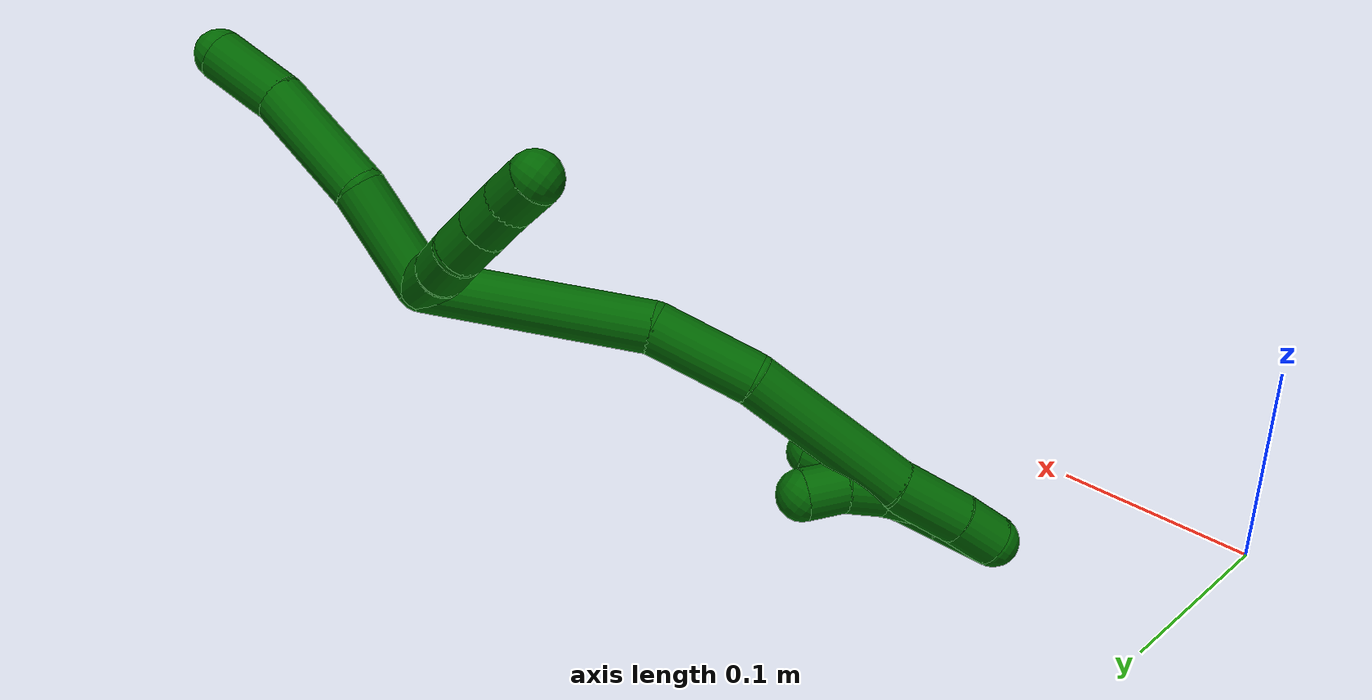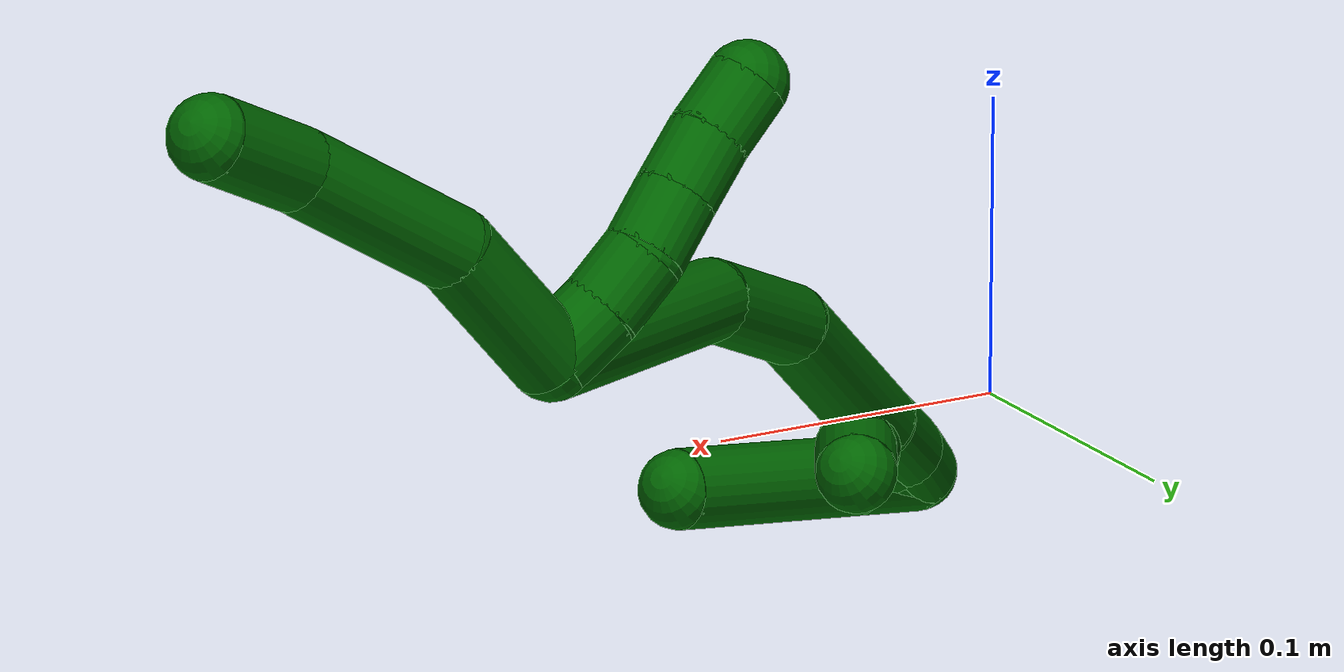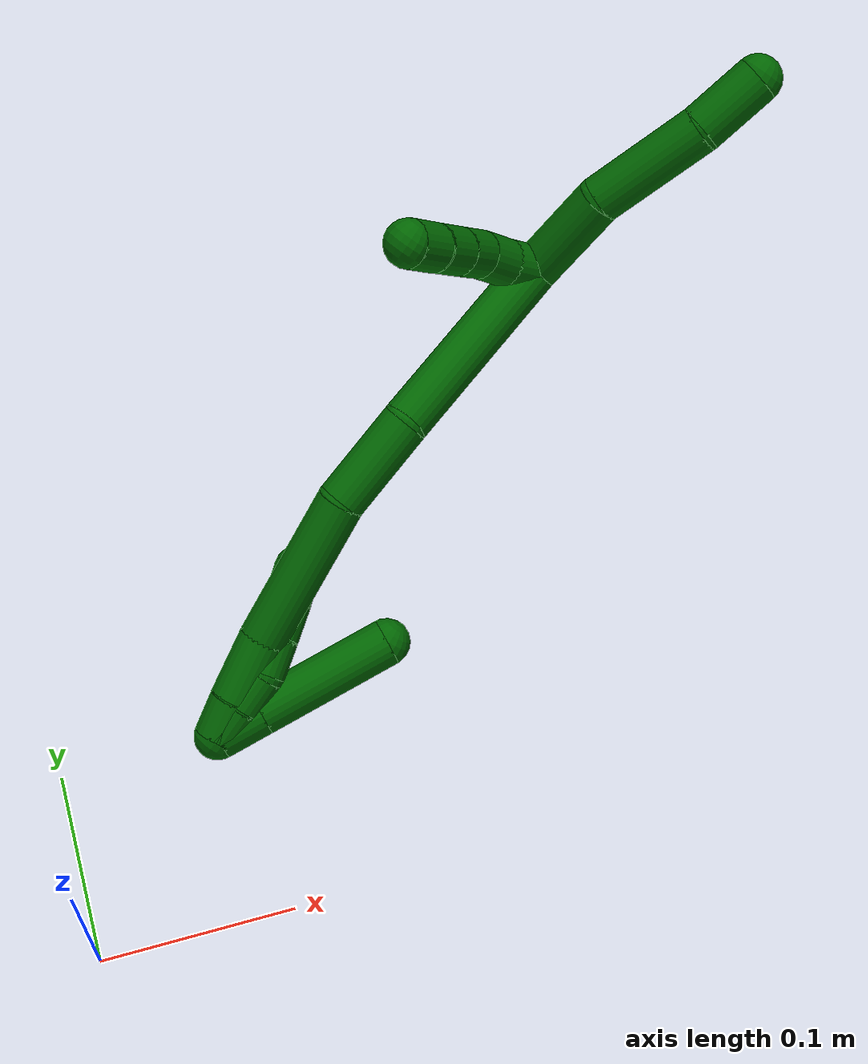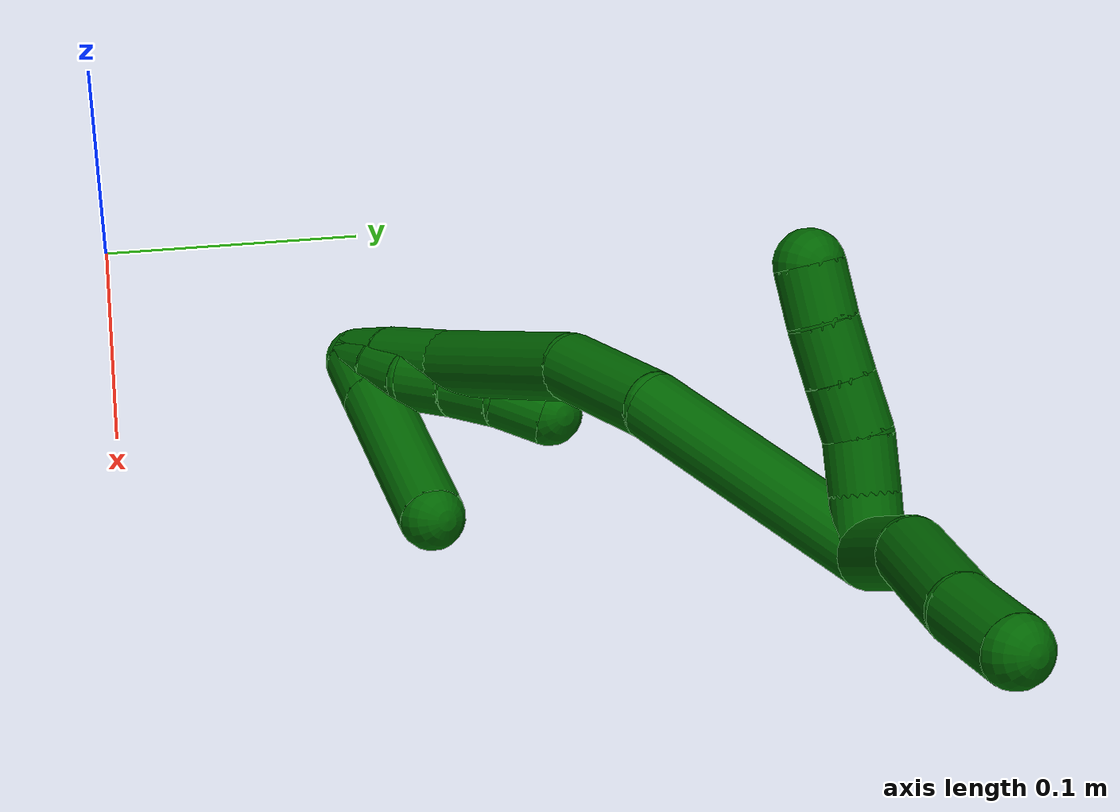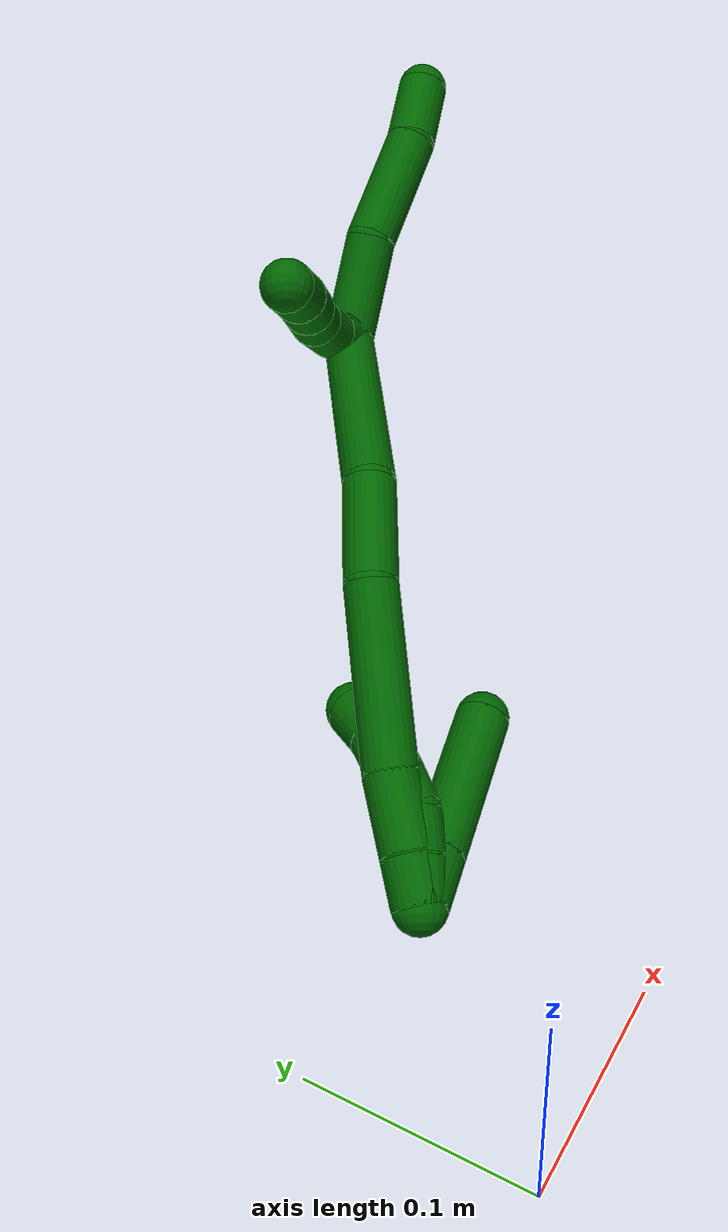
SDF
<sdf version="1.7">
 <world name="default">
  <model name="6">
   <static>0</static>
   <link name="6">
    <collision name="collision-cylinder-e_1_2_8">
     <pose>0.002683 -0.009106 0.02447 0.356231 0.102386 0.018447</pose>
     <geometry><cylinder><radius>0.0125</radius><length>0.052494</length></cylinder></geometry>
     <surface>
      <friction><ode><mu>1.16</mu><mu2>1.16</mu2><slip1>0</slip1><slip2>0</slip2></ode></friction>
      <contact><ode><kp>1e+06</kp><kd>1</kd><max_vel>0</max_vel><min_depth>0.001</min_depth></ode></contact>
     </surface>
    </collision>
    <visual name="visual-cylinder-e_1_2_8">
     <pose>0.002683 -0.009106 0.02447 0.356231 0.102386 0.018447</pose>
     <geometry><cylinder><radius>0.0125</radius><length>0.052494</length></cylinder></geometry>
     <material><ambient>0 0.392157 0.003922 1</ambient></material>
    </visual>
    <collision name="collision-cylinder-e_2_8_9">
     <pose>0.015368 -0.023022 0.077333 0.167857 0.334324 0.028388</pose>
     <geometry><cylinder><radius>0.0125</radius><length>0.06097</length></cylinder></geometry>
     <surface>
      <friction><ode><mu>1.16</mu><mu2>1.16</mu2><slip1>0</slip1><slip2>0</slip2></ode></friction>
      <contact><ode><kp>1e+06</kp><kd>1</kd><max_vel>0</max_vel><min_depth>0.001</min_depth></ode></contact>
     </surface>
    </collision>
    <visual name="visual-cylinder-e_2_8_9">
     <pose>0.015368 -0.023022 0.077333 0.167857 0.334324 0.028388</pose>
     <geometry><cylinder><radius>0.0125</radius><length>0.06097</length></cylinder></geometry>
     <material><ambient>0 0.392157 0.003922 1</ambient></material>
    </visual>
    <collision name="collision-cylinder-e_3_9_6">
     <pose>0.029758 -0.027435 0.123454 -0.022469 0.242479 -0.002738</pose>
     <geometry><cylinder><radius>0.0125</radius><length>0.036536</length></cylinder></geometry>
     <surface>
      <friction><ode><mu>1.16</mu><mu2>1.16</mu2><slip1>0</slip1><slip2>0</slip2></ode></friction>
      <contact><ode><kp>1e+06</kp><kd>1</kd><max_vel>0</max_vel><min_depth>0.001</min_depth></ode></contact>
     </surface>
    </collision>
    <visual name="visual-cylinder-e_3_9_6">
     <pose>0.029758 -0.027435 0.123454 -0.022469 0.242479 -0.002738</pose>
     <geometry><cylinder><radius>0.0125</radius><length>0.036536</length></cylinder></geometry>
     <material><ambient>0 0.392157 0.003922 1</ambient></material>
    </visual>
    <collision name="collision-cylinder-e_1_2_10">
     <pose>-0.00747 -0.006273 -0.0022 1.90807 -0.843588 -1.12848</pose>
     <geometry><cylinder><radius>0.0125</radius><length>0.02</length></cylinder></geometry>
     <surface>
      <friction><ode><mu>1.16</mu><mu2>1.16</mu2><slip1>0</slip1><slip2>0</slip2></ode></friction>
      <contact><ode><kp>1e+06</kp><kd>1</kd><max_vel>0</max_vel><min_depth>0.001</min_depth></ode></contact>
     </surface>
    </collision>
    <visual name="visual-cylinder-e_1_2_10">
     <pose>-0.00747 -0.006273 -0.0022 1.90807 -0.843588 -1.12848</pose>
     <geometry><cylinder><radius>0.0125</radius><length>0.02</length></cylinder></geometry>
     <material><ambient>0 0.392157 0.003922 1</ambient></material>
    </visual>
    <collision name="collision-cylinder-e_2_10_11">
     <pose>-0.02194 -0.019572 -0.005685 1.75175 -0.775342 -0.910938</pose>
     <geometry><cylinder><radius>0.0125</radius><length>0.02</length></cylinder></geometry>
     <surface>
      <friction><ode><mu>1.16</mu><mu2>1.16</mu2><slip1>0</slip1><slip2>0</slip2></ode></friction>
      <contact><ode><kp>1e+06</kp><kd>1</kd><max_vel>0</max_vel><min_depth>0.001</min_depth></ode></contact>
     </surface>
    </collision>
    <visual name="visual-cylinder-e_2_10_11">
     <pose>-0.02194 -0.019572 -0.005685 1.75175 -0.775342 -0.910938</pose>
     <geometry><cylinder><radius>0.0125</radius><length>0.02</length></cylinder></geometry>
     <material><ambient>0 0.392157 0.003922 1</ambient></material>
    </visual>
    <collision name="collision-cylinder-e_3_11_12">
     <pose>-0.034228 -0.034918 -0.008641 1.76896 -0.55719 -0.671887</pose>
     <geometry><cylinder><radius>0.0125</radius><length>0.02</length></cylinder></geometry>
     <surface>
      <friction><ode><mu>1.16</mu><mu2>1.16</mu2><slip1>0</slip1><slip2>0</slip2></ode></friction>
      <contact><ode><kp>1e+06</kp><kd>1</kd><max_vel>0</max_vel><min_depth>0.001</min_depth></ode></contact>
     </surface>
    </collision>
    <visual name="visual-cylinder-e_3_11_12">
     <pose>-0.034228 -0.034918 -0.008641 1.76896 -0.55719 -0.671887</pose>
     <geometry><cylinder><radius>0.0125</radius><length>0.02</length></cylinder></geometry>
     <material><ambient>0 0.392157 0.003922 1</ambient></material>
    </visual>
    <collision name="collision-cylinder-e_4_12_13">
     <pose>-0.044954 -0.051461 -0.011999 1.77316 -0.574933 -0.69549</pose>
     <geometry><cylinder><radius>0.0125</radius><length>0.02</length></cylinder></geometry>
     <surface>
      <friction><ode><mu>1.16</mu><mu2>1.16</mu2><slip1>0</slip1><slip2>0</slip2></ode></friction>
      <contact><ode><kp>1e+06</kp><kd>1</kd><max_vel>0</max_vel><min_depth>0.001</min_depth></ode></contact>
     </surface>
    </collision>
    <visual name="visual-cylinder-e_4_12_13">
     <pose>-0.044954 -0.051461 -0.011999 1.77316 -0.574933 -0.69549</pose>
     <geometry><cylinder><radius>0.0125</radius><length>0.02</length></cylinder></geometry>
     <material><ambient>0 0.392157 0.003922 1</ambient></material>
    </visual>
    <collision name="collision-cylinder-e_5_13_5">
     <pose>-0.056518 -0.067335 -0.01566 1.8233 -0.65937 -0.831798</pose>
     <geometry><cylinder><radius>0.0125</radius><length>0.02</length></cylinder></geometry>
     <surface>
      <friction><ode><mu>1.16</mu><mu2>1.16</mu2><slip1>0</slip1><slip2>0</slip2></ode></friction>
      <contact><ode><kp>1e+06</kp><kd>1</kd><max_vel>0</max_vel><min_depth>0.001</min_depth></ode></contact>
     </surface>
    </collision>
    <visual name="visual-cylinder-e_5_13_5">
     <pose>-0.056518 -0.067335 -0.01566 1.8233 -0.65937 -0.831798</pose>
     <geometry><cylinder><radius>0.0125</radius><length>0.02</length></cylinder></geometry>
     <material><ambient>0 0.392157 0.003922 1</ambient></material>
    </visual>
    <collision name="collision-cylinder-e_1_2_14">
     <pose>-0.006364 -0.02408 -0.047918 2.67592 -0.118109 -0.488683</pose>
     <geometry><cylinder><radius>0.0125</radius><length>0.108009</length></cylinder></geometry>
     <surface>
      <friction><ode><mu>1.16</mu><mu2>1.16</mu2><slip1>0</slip1><slip2>0</slip2></ode></friction>
      <contact><ode><kp>1e+06</kp><kd>1</kd><max_vel>0</max_vel><min_depth>0.001</min_depth></ode></contact>
     </surface>
    </collision>
    <visual name="visual-cylinder-e_1_2_14">
     <pose>-0.006364 -0.02408 -0.047918 2.67592 -0.118109 -0.488683</pose>
     <geometry><cylinder><radius>0.0125</radius><length>0.108009</length></cylinder></geometry>
     <material><ambient>0 0.392157 0.003922 1</ambient></material>
    </visual>
    <collision name="collision-cylinder-e_2_14_15">
     <pose>-0.01487 -0.052321 -0.120984 2.97764 -0.083861 -0.944255</pose>
     <geometry><cylinder><radius>0.0125</radius><length>0.05116</length></cylinder></geometry>
     <surface>
      <friction><ode><mu>1.16</mu><mu2>1.16</mu2><slip1>0</slip1><slip2>0</slip2></ode></friction>
      <contact><ode><kp>1e+06</kp><kd>1</kd><max_vel>0</max_vel><min_depth>0.001</min_depth></ode></contact>
     </surface>
    </collision>
    <visual name="visual-cylinder-e_2_14_15">
     <pose>-0.01487 -0.052321 -0.120984 2.97764 -0.083861 -0.944255</pose>
     <geometry><cylinder><radius>0.0125</radius><length>0.05116</length></cylinder></geometry>
     <material><ambient>0 0.392157 0.003922 1</ambient></material>
    </visual>
    <collision name="collision-cylinder-e_3_15_16">
     <pose>-0.013283 -0.055679 -0.18787 -3.12238 0.089103 -2.71712</pose>
     <geometry><cylinder><radius>0.0125</radius><length>0.083822</length></cylinder></geometry>
     <surface>
      <friction><ode><mu>1.16</mu><mu2>1.16</mu2><slip1>0</slip1><slip2>0</slip2></ode></friction>
      <contact><ode><kp>1e+06</kp><kd>1</kd><max_vel>0</max_vel><min_depth>0.001</min_depth></ode></contact>
     </surface>
    </collision>
    <visual name="visual-cylinder-e_3_15_16">
     <pose>-0.013283 -0.055679 -0.18787 -3.12238 0.089103 -2.71712</pose>
     <geometry><cylinder><radius>0.0125</radius><length>0.083822</length></cylinder></geometry>
     <material><ambient>0 0.392157 0.003922 1</ambient></material>
    </visual>
    <collision name="collision-cylinder-e_4_16_17">
     <pose>-0.006837 -0.056814 -0.246926 3.03021 0.154633 1.89408</pose>
     <geometry><cylinder><radius>0.0125</radius><length>0.035274</length></cylinder></geometry>
     <surface>
      <friction><ode><mu>1.16</mu><mu2>1.16</mu2><slip1>0</slip1><slip2>0</slip2></ode></friction>
      <contact><ode><kp>1e+06</kp><kd>1</kd><max_vel>0</max_vel><min_depth>0.001</min_depth></ode></contact>
     </surface>
    </collision>
    <visual name="visual-cylinder-e_4_16_17">
     <pose>-0.006837 -0.056814 -0.246926 3.03021 0.154633 1.89408</pose>
     <geometry><cylinder><radius>0.0125</radius><length>0.035274</length></cylinder></geometry>
     <material><ambient>0 0.392157 0.003922 1</ambient></material>
    </visual>
    <collision name="collision-cylinder-e_5_17_1">
     <pose>-0.002053 -0.059179 -0.274905 3.10149 0.191397 2.7297</pose>
     <geometry><cylinder><radius>0.0125</radius><length>0.021734</length></cylinder></geometry>
     <surface>
      <friction><ode><mu>1.16</mu><mu2>1.16</mu2><slip1>0</slip1><slip2>0</slip2></ode></friction>
      <contact><ode><kp>1e+06</kp><kd>1</kd><max_vel>0</max_vel><min_depth>0.001</min_depth></ode></contact>
     </surface>
    </collision>
    <visual name="visual-cylinder-e_5_17_1">
     <pose>-0.002053 -0.059179 -0.274905 3.10149 0.191397 2.7297</pose>
     <geometry><cylinder><radius>0.0125</radius><length>0.021734</length></cylinder></geometry>
     <material><ambient>0 0.392157 0.003922 1</ambient></material>
    </visual>
    <collision name="collision-cylinder-e_1_1_18">
     <pose>9.9e-05 -0.059088 -0.275579 -0.051861 0.00851 -0.000221</pose>
     <geometry><cylinder><radius>0.0125</radius><length>0.02</length></cylinder></geometry>
     <surface>
      <friction><ode><mu>1.16</mu><mu2>1.16</mu2><slip1>0</slip1><slip2>0</slip2></ode></friction>
      <contact><ode><kp>1e+06</kp><kd>1</kd><max_vel>0</max_vel><min_depth>0.001</min_depth></ode></contact>
     </surface>
    </collision>
    <visual name="visual-cylinder-e_1_1_18">
     <pose>9.9e-05 -0.059088 -0.275579 -0.051861 0.00851 -0.000221</pose>
     <geometry><cylinder><radius>0.0125</radius><length>0.02</length></cylinder></geometry>
     <material><ambient>0 0.392157 0.003922 1</ambient></material>
    </visual>
    <collision name="collision-cylinder-e_2_18_19">
     <pose>0.000233 -0.057079 -0.255704 -0.149627 0.004905 -0.000368</pose>
     <geometry><cylinder><radius>0.0125</radius><length>0.02</length></cylinder></geometry>
     <surface>
      <friction><ode><mu>1.16</mu><mu2>1.16</mu2><slip1>0</slip1><slip2>0</slip2></ode></friction>
      <contact><ode><kp>1e+06</kp><kd>1</kd><max_vel>0</max_vel><min_depth>0.001</min_depth></ode></contact>
     </surface>
    </collision>
    <visual name="visual-cylinder-e_2_18_19">
     <pose>0.000233 -0.057079 -0.255704 -0.149627 0.004905 -0.000368</pose>
     <geometry><cylinder><radius>0.0125</radius><length>0.02</length></cylinder></geometry>
     <material><ambient>0 0.392157 0.003922 1</ambient></material>
    </visual>
    <collision name="collision-cylinder-e_3_19_20">
     <pose>-0.002052 -0.052207 -0.236699 -0.355139 -0.2356 0.042471</pose>
     <geometry><cylinder><radius>0.0125</radius><length>0.02</length></cylinder></geometry>
     <surface>
      <friction><ode><mu>1.16</mu><mu2>1.16</mu2><slip1>0</slip1><slip2>0</slip2></ode></friction>
      <contact><ode><kp>1e+06</kp><kd>1</kd><max_vel>0</max_vel><min_depth>0.001</min_depth></ode></contact>
     </surface>
    </collision>
    <visual name="visual-cylinder-e_3_19_20">
     <pose>-0.002052 -0.052207 -0.236699 -0.355139 -0.2356 0.042471</pose>
     <geometry><cylinder><radius>0.0125</radius><length>0.02</length></cylinder></geometry>
     <material><ambient>0 0.392157 0.003922 1</ambient></material>
    </visual>
    <collision name="collision-cylinder-e_4_20_21">
     <pose>-0.006676 -0.04432 -0.218953 -0.481252 -0.230985 0.056917</pose>
     <geometry><cylinder><radius>0.0125</radius><length>0.02</length></cylinder></geometry>
     <surface>
      <friction><ode><mu>1.16</mu><mu2>1.16</mu2><slip1>0</slip1><slip2>0</slip2></ode></friction>
      <contact><ode><kp>1e+06</kp><kd>1</kd><max_vel>0</max_vel><min_depth>0.001</min_depth></ode></contact>
     </surface>
    </collision>
    <visual name="visual-cylinder-e_4_20_21">
     <pose>-0.006676 -0.04432 -0.218953 -0.481252 -0.230985 0.056917</pose>
     <geometry><cylinder><radius>0.0125</radius><length>0.02</length></cylinder></geometry>
     <material><ambient>0 0.392157 0.003922 1</ambient></material>
    </visual>
    <collision name="collision-cylinder-e_5_21_4">
     <pose>-0.011152 -0.03293 -0.20341 -0.783197 -0.220466 0.091343</pose>
     <geometry><cylinder><radius>0.0125</radius><length>0.02</length></cylinder></geometry>
     <surface>
      <friction><ode><mu>1.16</mu><mu2>1.16</mu2><slip1>0</slip1><slip2>0</slip2></ode></friction>
      <contact><ode><kp>1e+06</kp><kd>1</kd><max_vel>0</max_vel><min_depth>0.001</min_depth></ode></contact>
     </surface>
    </collision>
    <visual name="visual-cylinder-e_5_21_4">
     <pose>-0.011152 -0.03293 -0.20341 -0.783197 -0.220466 0.091343</pose>
     <geometry><cylinder><radius>0.0125</radius><length>0.02</length></cylinder></geometry>
     <material><ambient>0 0.392157 0.003922 1</ambient></material>
    </visual>
    <collision name="collision-cylinder-e_1_1_22">
     <pose>0.005864 -0.056792 -0.274592 -0.251085 0.47667 -0.061305</pose>
     <geometry><cylinder><radius>0.0125</radius><length>0.025499</length></cylinder></geometry>
     <surface>
      <friction><ode><mu>1.16</mu><mu2>1.16</mu2><slip1>0</slip1><slip2>0</slip2></ode></friction>
      <contact><ode><kp>1e+06</kp><kd>1</kd><max_vel>0</max_vel><min_depth>0.001</min_depth></ode></contact>
     </surface>
    </collision>
    <visual name="visual-cylinder-e_1_1_22">
     <pose>0.005864 -0.056792 -0.274592 -0.251085 0.47667 -0.061305</pose>
     <geometry><cylinder><radius>0.0125</radius><length>0.025499</length></cylinder></geometry>
     <material><ambient>0 0.392157 0.003922 1</ambient></material>
    </visual>
    <collision name="collision-cylinder-e_2_22_3">
     <pose>0.028781 -0.045713 -0.231556 -0.252266 0.475956 -0.061501</pose>
     <geometry><cylinder><radius>0.0125</radius><length>0.074501</length></cylinder></geometry>
     <surface>
      <friction><ode><mu>1.16</mu><mu2>1.16</mu2><slip1>0</slip1><slip2>0</slip2></ode></friction>
      <contact><ode><kp>1e+06</kp><kd>1</kd><max_vel>0</max_vel><min_depth>0.001</min_depth></ode></contact>
     </surface>
    </collision>
    <visual name="visual-cylinder-e_2_22_3">
     <pose>0.028781 -0.045713 -0.231556 -0.252266 0.475956 -0.061501</pose>
     <geometry><cylinder><radius>0.0125</radius><length>0.074501</length></cylinder></geometry>
     <material><ambient>0 0.392157 0.003922 1</ambient></material>
    </visual>
    <collision name="collision-sphere-3">
     <pose>0.045849 -0.037449 -0.199494 0 -0 0</pose>
     <geometry><sphere><radius>0.0125</radius></sphere></geometry>
     <surface>
      <friction><ode><mu>1.16</mu><mu2>1.16</mu2><slip1>0</slip1><slip2>0</slip2></ode></friction>
      <contact><ode><kp>1e+06</kp><kd>1</kd><max_vel>0</max_vel><min_depth>0.001</min_depth></ode></contact>
     </surface>
    </collision>
    <visual name="visual-sphere-3">
     <pose>0.045849 -0.037449 -0.199494 0 -0 0</pose>
     <geometry><sphere><radius>0.0125</radius></sphere></geometry>
     <material><ambient>0 0.392157 0.003922 1</ambient></material>
    </visual>
    <collision name="collision-sphere-22">
     <pose>0.011714 -0.053978 -0.263618 0 -0 0</pose>
     <geometry><sphere><radius>0.0125</radius></sphere></geometry>
     <surface>
      <friction><ode><mu>1.16</mu><mu2>1.16</mu2><slip1>0</slip1><slip2>0</slip2></ode></friction>
      <contact><ode><kp>1e+06</kp><kd>1</kd><max_vel>0</max_vel><min_depth>0.001</min_depth></ode></contact>
     </surface>
    </collision>
    <visual name="visual-sphere-22">
     <pose>0.011714 -0.053978 -0.263618 0 -0 0</pose>
     <geometry><sphere><radius>0.0125</radius></sphere></geometry>
     <material><ambient>0 0.392157 0.003922 1</ambient></material>
    </visual>
    <collision name="collision-sphere-4">
     <pose>-0.013339 -0.026045 -0.196495 0 -0 0</pose>
     <geometry><sphere><radius>0.0125</radius></sphere></geometry>
     <surface>
      <friction><ode><mu>1.16</mu><mu2>1.16</mu2><slip1>0</slip1><slip2>0</slip2></ode></friction>
      <contact><ode><kp>1e+06</kp><kd>1</kd><max_vel>0</max_vel><min_depth>0.001</min_depth></ode></contact>
     </surface>
    </collision>
    <visual name="visual-sphere-4">
     <pose>-0.013339 -0.026045 -0.196495 0 -0 0</pose>
     <geometry><sphere><radius>0.0125</radius></sphere></geometry>
     <material><ambient>0 0.392157 0.003922 1</ambient></material>
    </visual>
    <collision name="collision-sphere-21">
     <pose>-0.008965 -0.039814 -0.210325 0 -0 0</pose>
     <geometry><sphere><radius>0.0125</radius></sphere></geometry>
     <surface>
      <friction><ode><mu>1.16</mu><mu2>1.16</mu2><slip1>0</slip1><slip2>0</slip2></ode></friction>
      <contact><ode><kp>1e+06</kp><kd>1</kd><max_vel>0</max_vel><min_depth>0.001</min_depth></ode></contact>
     </surface>
    </collision>
    <visual name="visual-sphere-21">
     <pose>-0.008965 -0.039814 -0.210325 0 -0 0</pose>
     <geometry><sphere><radius>0.0125</radius></sphere></geometry>
     <material><ambient>0 0.392157 0.003922 1</ambient></material>
    </visual>
    <collision name="collision-sphere-20">
     <pose>-0.004386 -0.048826 -0.227582 0 -0 0</pose>
     <geometry><sphere><radius>0.0125</radius></sphere></geometry>
     <surface>
      <friction><ode><mu>1.16</mu><mu2>1.16</mu2><slip1>0</slip1><slip2>0</slip2></ode></friction>
      <contact><ode><kp>1e+06</kp><kd>1</kd><max_vel>0</max_vel><min_depth>0.001</min_depth></ode></contact>
     </surface>
    </collision>
    <visual name="visual-sphere-20">
     <pose>-0.004386 -0.048826 -0.227582 0 -0 0</pose>
     <geometry><sphere><radius>0.0125</radius></sphere></geometry>
     <material><ambient>0 0.392157 0.003922 1</ambient></material>
    </visual>
    <collision name="collision-sphere-11">
     <pose>-0.02894 -0.026597 -0.00697 0 -0 0</pose>
     <geometry><sphere><radius>0.0125</radius></sphere></geometry>
     <surface>
      <friction><ode><mu>1.16</mu><mu2>1.16</mu2><slip1>0</slip1><slip2>0</slip2></ode></friction>
      <contact><ode><kp>1e+06</kp><kd>1</kd><max_vel>0</max_vel><min_depth>0.001</min_depth></ode></contact>
     </surface>
    </collision>
    <visual name="visual-sphere-11">
     <pose>-0.02894 -0.026597 -0.00697 0 -0 0</pose>
     <geometry><sphere><radius>0.0125</radius></sphere></geometry>
     <material><ambient>0 0.392157 0.003922 1</ambient></material>
    </visual>
    <collision name="collision-sphere-10">
     <pose>-0.014941 -0.012547 -0.0044 0 -0 0</pose>
     <geometry><sphere><radius>0.0125</radius></sphere></geometry>
     <surface>
      <friction><ode><mu>1.16</mu><mu2>1.16</mu2><slip1>0</slip1><slip2>0</slip2></ode></friction>
      <contact><ode><kp>1e+06</kp><kd>1</kd><max_vel>0</max_vel><min_depth>0.001</min_depth></ode></contact>
     </surface>
    </collision>
    <visual name="visual-sphere-10">
     <pose>-0.014941 -0.012547 -0.0044 0 -0 0</pose>
     <geometry><sphere><radius>0.0125</radius></sphere></geometry>
     <material><ambient>0 0.392157 0.003922 1</ambient></material>
    </visual>
    <collision name="collision-sphere-6">
     <pose>0.034144 -0.027036 0.141184 0 -0 0</pose>
     <geometry><sphere><radius>0.0125</radius></sphere></geometry>
     <surface>
      <friction><ode><mu>1.16</mu><mu2>1.16</mu2><slip1>0</slip1><slip2>0</slip2></ode></friction>
      <contact><ode><kp>1e+06</kp><kd>1</kd><max_vel>0</max_vel><min_depth>0.001</min_depth></ode></contact>
     </surface>
    </collision>
    <visual name="visual-sphere-6">
     <pose>0.034144 -0.027036 0.141184 0 -0 0</pose>
     <geometry><sphere><radius>0.0125</radius></sphere></geometry>
     <material><ambient>0 0.392157 0.003922 1</ambient></material>
    </visual>
    <collision name="collision-sphere-9">
     <pose>0.025371 -0.027833 0.105725 0 -0 0</pose>
     <geometry><sphere><radius>0.0125</radius></sphere></geometry>
     <surface>
      <friction><ode><mu>1.16</mu><mu2>1.16</mu2><slip1>0</slip1><slip2>0</slip2></ode></friction>
      <contact><ode><kp>1e+06</kp><kd>1</kd><max_vel>0</max_vel><min_depth>0.001</min_depth></ode></contact>
     </surface>
    </collision>
    <visual name="visual-sphere-9">
     <pose>0.025371 -0.027833 0.105725 0 -0 0</pose>
     <geometry><sphere><radius>0.0125</radius></sphere></geometry>
     <material><ambient>0 0.392157 0.003922 1</ambient></material>
    </visual>
    <collision name="collision-sphere-2">
     <geometry><sphere><radius>0.0125</radius></sphere></geometry>
     <surface>
      <friction><ode><mu>1.16</mu><mu2>1.16</mu2><slip1>0</slip1><slip2>0</slip2></ode></friction>
      <contact><ode><kp>1e+06</kp><kd>1</kd><max_vel>0</max_vel><min_depth>0.001</min_depth></ode></contact>
     </surface>
    </collision>
    <visual name="visual-sphere-2">
     <geometry><sphere><radius>0.0125</radius></sphere></geometry>
     <material><ambient>0 0.392157 0.003922 1</ambient></material>
    </visual>
    <collision name="collision-sphere-19">
     <pose>0.000282 -0.055589 -0.245816 0 -0 0</pose>
     <geometry><sphere><radius>0.0125</radius></sphere></geometry>
     <surface>
      <friction><ode><mu>1.16</mu><mu2>1.16</mu2><slip1>0</slip1><slip2>0</slip2></ode></friction>
      <contact><ode><kp>1e+06</kp><kd>1</kd><max_vel>0</max_vel><min_depth>0.001</min_depth></ode></contact>
     </surface>
    </collision>
    <visual name="visual-sphere-19">
     <pose>0.000282 -0.055589 -0.245816 0 -0 0</pose>
     <geometry><sphere><radius>0.0125</radius></sphere></geometry>
     <material><ambient>0 0.392157 0.003922 1</ambient></material>
    </visual>
    <collision name="collision-sphere-8">
     <pose>0.005365 -0.018211 0.048941 0 -0 0</pose>
     <geometry><sphere><radius>0.0125</radius></sphere></geometry>
     <surface>
      <friction><ode><mu>1.16</mu><mu2>1.16</mu2><slip1>0</slip1><slip2>0</slip2></ode></friction>
      <contact><ode><kp>1e+06</kp><kd>1</kd><max_vel>0</max_vel><min_depth>0.001</min_depth></ode></contact>
     </surface>
    </collision>
    <visual name="visual-sphere-8">
     <pose>0.005365 -0.018211 0.048941 0 -0 0</pose>
     <geometry><sphere><radius>0.0125</radius></sphere></geometry>
     <material><ambient>0 0.392157 0.003922 1</ambient></material>
    </visual>
    <collision name="collision-sphere-12">
     <pose>-0.039516 -0.04324 -0.010312 0 -0 0</pose>
     <geometry><sphere><radius>0.0125</radius></sphere></geometry>
     <surface>
      <friction><ode><mu>1.16</mu><mu2>1.16</mu2><slip1>0</slip1><slip2>0</slip2></ode></friction>
      <contact><ode><kp>1e+06</kp><kd>1</kd><max_vel>0</max_vel><min_depth>0.001</min_depth></ode></contact>
     </surface>
    </collision>
    <visual name="visual-sphere-12">
     <pose>-0.039516 -0.04324 -0.010312 0 -0 0</pose>
     <geometry><sphere><radius>0.0125</radius></sphere></geometry>
     <material><ambient>0 0.392157 0.003922 1</ambient></material>
    </visual>
    <collision name="collision-sphere-13">
     <pose>-0.050392 -0.059682 -0.013686 0 -0 0</pose>
     <geometry><sphere><radius>0.0125</radius></sphere></geometry>
     <surface>
      <friction><ode><mu>1.16</mu><mu2>1.16</mu2><slip1>0</slip1><slip2>0</slip2></ode></friction>
      <contact><ode><kp>1e+06</kp><kd>1</kd><max_vel>0</max_vel><min_depth>0.001</min_depth></ode></contact>
     </surface>
    </collision>
    <visual name="visual-sphere-13">
     <pose>-0.050392 -0.059682 -0.013686 0 -0 0</pose>
     <geometry><sphere><radius>0.0125</radius></sphere></geometry>
     <material><ambient>0 0.392157 0.003922 1</ambient></material>
    </visual>
    <collision name="collision-sphere-5">
     <pose>-0.062644 -0.074988 -0.017635 0 -0 0</pose>
     <geometry><sphere><radius>0.0125</radius></sphere></geometry>
     <surface>
      <friction><ode><mu>1.16</mu><mu2>1.16</mu2><slip1>0</slip1><slip2>0</slip2></ode></friction>
      <contact><ode><kp>1e+06</kp><kd>1</kd><max_vel>0</max_vel><min_depth>0.001</min_depth></ode></contact>
     </surface>
    </collision>
    <visual name="visual-sphere-5">
     <pose>-0.062644 -0.074988 -0.017635 0 -0 0</pose>
     <geometry><sphere><radius>0.0125</radius></sphere></geometry>
     <material><ambient>0 0.392157 0.003922 1</ambient></material>
    </visual>
    <collision name="collision-sphere-14">
     <pose>-0.012727 -0.04816 -0.095836 0 -0 0</pose>
     <geometry><sphere><radius>0.0125</radius></sphere></geometry>
     <surface>
      <friction><ode><mu>1.16</mu><mu2>1.16</mu2><slip1>0</slip1><slip2>0</slip2></ode></friction>
      <contact><ode><kp>1e+06</kp><kd>1</kd><max_vel>0</max_vel><min_depth>0.001</min_depth></ode></contact>
     </surface>
    </collision>
    <visual name="visual-sphere-14">
     <pose>-0.012727 -0.04816 -0.095836 0 -0 0</pose>
     <geometry><sphere><radius>0.0125</radius></sphere></geometry>
     <material><ambient>0 0.392157 0.003922 1</ambient></material>
    </visual>
    <collision name="collision-sphere-15">
     <pose>-0.017012 -0.056481 -0.146133 0 -0 0</pose>
     <geometry><sphere><radius>0.0125</radius></sphere></geometry>
     <surface>
      <friction><ode><mu>1.16</mu><mu2>1.16</mu2><slip1>0</slip1><slip2>0</slip2></ode></friction>
      <contact><ode><kp>1e+06</kp><kd>1</kd><max_vel>0</max_vel><min_depth>0.001</min_depth></ode></contact>
     </surface>
    </collision>
    <visual name="visual-sphere-15">
     <pose>-0.017012 -0.056481 -0.146133 0 -0 0</pose>
     <geometry><sphere><radius>0.0125</radius></sphere></geometry>
     <material><ambient>0 0.392157 0.003922 1</ambient></material>
    </visual>
    <collision name="collision-sphere-16">
     <pose>-0.009554 -0.054877 -0.229607 0 -0 0</pose>
     <geometry><sphere><radius>0.0125</radius></sphere></geometry>
     <surface>
      <friction><ode><mu>1.16</mu><mu2>1.16</mu2><slip1>0</slip1><slip2>0</slip2></ode></friction>
      <contact><ode><kp>1e+06</kp><kd>1</kd><max_vel>0</max_vel><min_depth>0.001</min_depth></ode></contact>
     </surface>
    </collision>
    <visual name="visual-sphere-16">
     <pose>-0.009554 -0.054877 -0.229607 0 -0 0</pose>
     <geometry><sphere><radius>0.0125</radius></sphere></geometry>
     <material><ambient>0 0.392157 0.003922 1</ambient></material>
    </visual>
    <collision name="collision-sphere-17">
     <pose>-0.004121 -0.058751 -0.264245 0 -0 0</pose>
     <geometry><sphere><radius>0.0125</radius></sphere></geometry>
     <surface>
      <friction><ode><mu>1.16</mu><mu2>1.16</mu2><slip1>0</slip1><slip2>0</slip2></ode></friction>
      <contact><ode><kp>1e+06</kp><kd>1</kd><max_vel>0</max_vel><min_depth>0.001</min_depth></ode></contact>
     </surface>
    </collision>
    <visual name="visual-sphere-17">
     <pose>-0.004121 -0.058751 -0.264245 0 -0 0</pose>
     <geometry><sphere><radius>0.0125</radius></sphere></geometry>
     <material><ambient>0 0.392157 0.003922 1</ambient></material>
    </visual>
    <collision name="collision-sphere-1">
     <pose>1.4e-05 -0.059607 -0.285565 0 -0 0</pose>
     <geometry><sphere><radius>0.0125</radius></sphere></geometry>
     <surface>
      <friction><ode><mu>1.16</mu><mu2>1.16</mu2><slip1>0</slip1><slip2>0</slip2></ode></friction>
      <contact><ode><kp>1e+06</kp><kd>1</kd><max_vel>0</max_vel><min_depth>0.001</min_depth></ode></contact>
     </surface>
    </collision>
    <visual name="visual-sphere-1">
     <pose>1.4e-05 -0.059607 -0.285565 0 -0 0</pose>
     <geometry><sphere><radius>0.0125</radius></sphere></geometry>
     <material><ambient>0 0.392157 0.003922 1</ambient></material>
    </visual>
    <collision name="collision-sphere-18">
     <pose>0.000184 -0.05857 -0.265592 0 -0 0</pose>
     <geometry><sphere><radius>0.0125</radius></sphere></geometry>
     <surface>
      <friction><ode><mu>1.16</mu><mu2>1.16</mu2><slip1>0</slip1><slip2>0</slip2></ode></friction>
      <contact><ode><kp>1e+06</kp><kd>1</kd><max_vel>0</max_vel><min_depth>0.001</min_depth></ode></contact>
     </surface>
    </collision>
    <visual name="visual-sphere-18">
     <pose>0.000184 -0.05857 -0.265592 0 -0 0</pose>
     <geometry><sphere><radius>0.0125</radius></sphere></geometry>
     <material><ambient>0 0.392157 0.003922 1</ambient></material>
    </visual>
    <inertial>
     <pose>-0.002776 -0.039302 -0.106975 0 -0 0</pose>
     <mass>0.75</mass>
     <inertia><ixx>5.6e-05</ixx><ixy>0</ixy><ixz>0</ixz><iyy>-4.4e-05</iyy><iyz>0</iyz><izz>4e-05</izz></inertia>
    </inertial>
   </link>
   <pose>0.298058 0.253979 0.132449 -0.924655 0.3524 -0.771813</pose>
  </model>
 </world>
</sdf>
